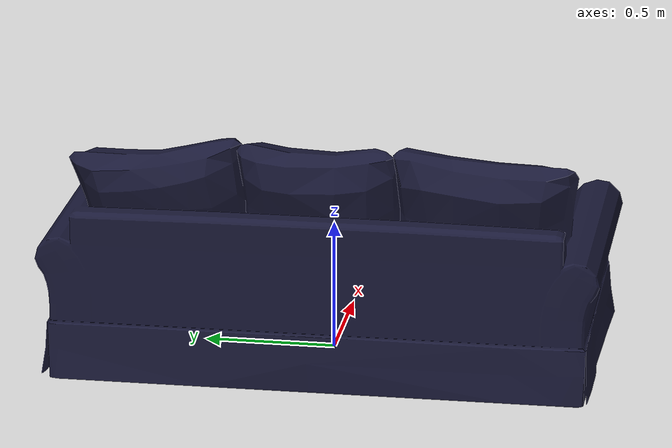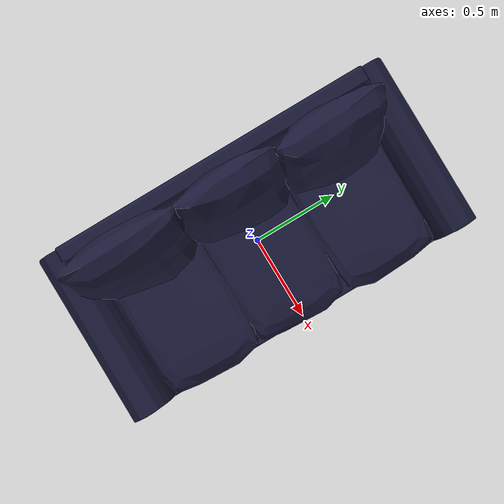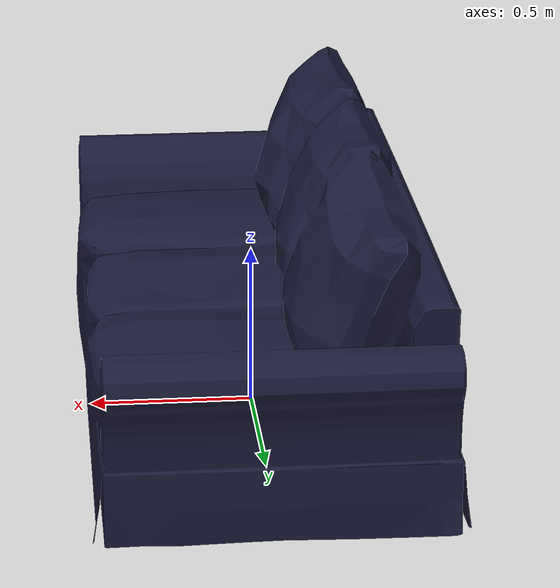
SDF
<?xml version='1.0' ?>
<sdf version='1.6'>
  <model name='sofa'>
    <static>false</static>
    <link name='link'>
      <collision name='collision'>
        <pose>-0 0 0 0 0 1.570796</pose>
        <geometry>
          <mesh>
            <uri>model://volta_simulation/models/sofa/meshes/sofa.dae</uri>
          </mesh>
        </geometry>
        <surface>
          <friction>
            <ode>
              <mu>100</mu>
              <mu2>50</mu2>
            </ode>
          </friction>
        </surface>
      </collision>
      <visual name='visual'>
        <pose>-0 0 0 0 0 1.570796</pose>
        <geometry>
          <mesh>
            <uri>model://volta_simulation/models/sofa/meshes/sofa.dae</uri>
          </mesh>
        </geometry>
     </visual>
      <inertial>
        <pose>-0.1 0 0.3 0 0 0</pose>
        <mass>35</mass>
        <inertia>
          <ixx>13.53667489 </ixx>
          <iyy>6.11757832 </iyy>
          <izz>13.56535604</izz>
          <ixy>0</ixy>
          <ixz>0.25</ixz>
          <iyz>0</iyz>
        </inertia>
      </inertial>
    </link>
  </model>
</sdf>
